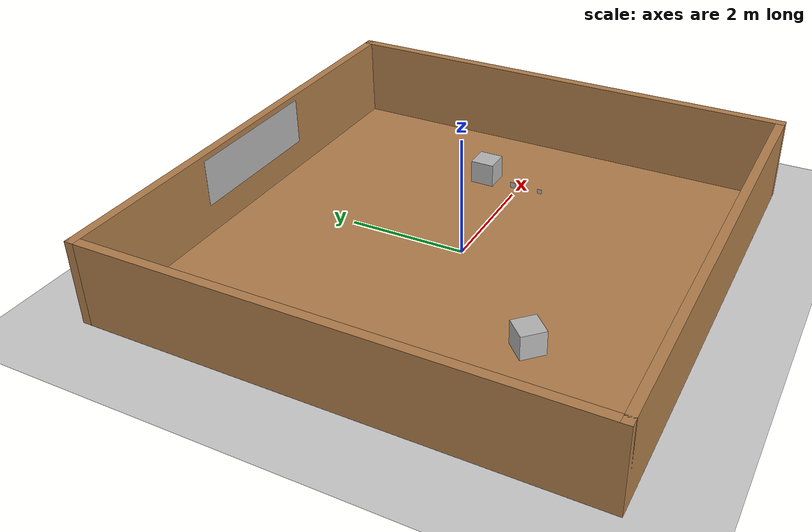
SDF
<?xml version="1.0" ?>
<sdf version="1.4">
	<world name="default">

		<include>
			<uri>model://ground_plane</uri>
		</include>

		<include>
			<uri>model://sun</uri>
		</include>

		<scene>
			<ambient>0.4 0.4 0.4 1</ambient>
			<background>0.7 0.7 0.7 1</background>
			<shadows>false</shadows>
		</scene>

		<gui fullscreen='0'>
			<camera name='user_camera'>
				<pose frame=''>6.577 -6.453 5.620 0 0.533 2.322</pose>
				<view_controller>orbit</view_controller>
				<projection_type>perspective</projection_type>
			</camera>
		</gui>

		<physics type="ode">
			<real_time_update_rate>1000.0</real_time_update_rate>
			<max_step_size>0.001</max_step_size>
			<real_time_factor>1</real_time_factor>
			<ode>
				<solver>
					<type>quick</type>
					<iters>150</iters>
					<precon_iters>0</precon_iters>
					<sor>1.400000</sor>
					<use_dynamic_moi_rescaling>1</use_dynamic_moi_rescaling>
				</solver>
				<constraints>
					<cfm>0.00001</cfm>
					<erp>0.2</erp>
					<contact_max_correcting_vel>2000.000000</contact_max_correcting_vel>
					<contact_surface_layer>0.01000</contact_surface_layer>
				</constraints>
			</ode>
		</physics>

		<model name="kubot_square">
			<static>1</static>
			<include>
				<uri>model://kubot_square</uri>
			</include>
		</model>

		<model name="syy_plaque">
			<include>
				<uri>model://syy_plaque</uri>
			</include>
			<pose>0 3.92 0.9 0 1.5707 1.5707</pose>
		</model>

		<model name="syy_cube1">
			<include>
				<uri>model://syy_cube</uri>
			</include>
			<pose>2 0.5 0.2 0 0 3.1415</pose>
		</model>

		<model name="syy_cube2">
			<include>
				<uri>model://syy_cube</uri>
			</include>
			<pose>-2 -2 0.2 0 0 0.7853</pose>
		</model>

		<model name="tag0">
			<static>1</static>
			<include>
				<uri>model://Apriltag/Apriltag36_11_00000</uri>
			</include>
			<pose frame=''> 2 0 0.2 3.14 -1.57 3.14</pose>
		</model>

		<model name="markers_0">
			<static>1</static>
			<include>
				<uri>model://Artag/Artag_markers_0</uri>
			</include>
			<pose frame=''> 2 -0.5 0.2 0 1.5707 0</pose>
		</model>
	</world>
</sdf>

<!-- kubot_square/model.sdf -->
<sdf version='1.4'>
	<model name='kubot_square'>
		<pose frame=''>0 0 0 0 -0 0</pose>
		<link name='Wall_0'>
			<collision name='Wall_0_Collision'>
				<geometry>
					<box>
						<size>8.15 0.15 1.4</size>
					</box>
				</geometry>
				<pose frame=''>0 0 0.7 0 -0 0</pose>
			</collision>
			<visual name='Wall_0_Visual'>
				<pose frame=''>0 0 0.7 0 -0 0</pose>
				<geometry>
					<box>
						<size>8.15 0.15 1.4</size>
					</box>
				</geometry>
				<material>
					<script>
						<uri>file://media/materials/scripts/gazebo.material</uri>
						<name>Gazebo/Wood</name>
					</script>
					<ambient>1 1 1 1</ambient>
				</material>
				<meta>
					<layer>0</layer>
				</meta>
			</visual>
			<pose frame=''>0 -4 0 0 -0 0</pose>
		</link>
		<link name='Wall_1'>
			<collision name='Wall_1_Collision'>
				<geometry>
					<box>
						<size>8.15 0.15 1.4</size>
					</box>
				</geometry>
				<pose frame=''>0 0 0.7 0 -0 0</pose>
			</collision>
			<visual name='Wall_1_Visual'>
				<pose frame=''>0 0 0.7 0 -0 0</pose>
				<geometry>
					<box>
						<size>8.15 0.15 1.4</size>
					</box>
				</geometry>
				<material>
					<script>
						<uri>file://media/materials/scripts/gazebo.material</uri>
						<name>Gazebo/Wood</name>
					</script>
					<ambient>1 1 1 1</ambient>
				</material>
				<meta>
					<layer>0</layer>
				</meta>
			</visual>
			<pose frame=''>4 0 0 0 -0 1.5708</pose>
		</link>
		<link name='Wall_2'>
			<collision name='Wall_2_Collision'>
				<geometry>
					<box>
						<size>8.15 0.16 1.4</size>
					</box>
				</geometry>
				<pose frame=''>0 0 0.7 0 -0 0</pose>
			</collision>
			<visual name='Wall_2_Visual'>
				<pose frame=''>0 0 0.7 0 -0 0</pose>
				<geometry>
					<box>
						<size>8.15 0.15 1.4</size>
					</box>
				</geometry>
				<material>
					<script>
						<uri>file://media/materials/scripts/gazebo.material</uri>
						<name>Gazebo/Wood</name>
					</script>
					<ambient>1 1 1 1</ambient>
				</material>
				<meta>
					<layer>0</layer>
				</meta>
			</visual>
			<pose frame=''>0 4 0 0 -0 3.14159</pose>
		</link>
		<link name='Wall_3'>
			<collision name='Wall_3_Collision'>
				<geometry>
					<box>
						<size>8.15 0.15 1.4</size>
					</box>
				</geometry>
				<pose frame=''>0 0 0.7 0 -0 0</pose>
			</collision>
			<visual name='Wall_3_Visual'>
				<pose frame=''>0 0 0.7 0 -0 0</pose>
				<geometry>
					<box>
						<size>8.15 0.15 1.4</size>
					</box>
				</geometry>
				<material>
					<script>
						<uri>file://media/materials/scripts/gazebo.material</uri>
						<name>Gazebo/Wood</name>
					</script>
					<ambient>1 1 1 1</ambient>
				</material>
				<meta>
					<layer>0</layer>
				</meta>
			</visual>
			<pose frame=''>-4 0 0 0 -0 -1.5708</pose>
		</link>
		<link name='Wall_4'>
			<collision name='Wall_4_Collision'>
				<geometry>
					<box>
						<size>8.15 8.15 0.001</size>
					</box>
				</geometry>
				<pose frame=''>0 0 0 0 -0 0</pose>
			</collision>
			<visual name='Wall_4_Visual'>
				<pose frame=''>0 0 0.0 0 -0 0</pose>
				<geometry>
					<box>
						<size>8.15 8.15 0.001</size>
					</box>
				</geometry>
				<material>
					<script>
						<uri>file://media/materials/scripts/gazebo.material</uri>
						<name>Gazebo/Wood</name>
					</script>
					<ambient>1 1 1 1</ambient>
				</material>
				<meta>
					<layer>0</layer>
				</meta>
			</visual>
			<pose frame=''>0 0 0 0 -0 0</pose>
		</link>
		<static>1</static>
	</model>
</sdf>

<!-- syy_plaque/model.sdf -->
<sdf version='1.6'>
	<model name='syy_plaque'>
		<link name='main'>
			<pose frame=''>0 0 0 0 0 0 </pose>
			<visual name='main_Visual'>
				<geometry>
					<box>
						<size>0.812 2.541 0.001</size>
					</box>
				</geometry>
				<material>
					<script>
						<uri>model://syy_plaque/materials/scripts</uri>
						<uri>model://syy_plaque/materials/textures</uri>
						<name>syy_plaque</name>
					</script>
				</material>
			</visual>
		</link>
		<static>1</static>
	</model>
</sdf>

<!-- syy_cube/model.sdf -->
<sdf version='1.6'>
  <model name='syy_cube'>
    <link name='link_0'>
      <inertial>
        <mass>1</mass>
        <inertia>
          <ixx>0.166667</ixx>
          <ixy>0</ixy>
          <ixz>0</ixz>
          <iyy>0.166667</iyy>
          <iyz>0</iyz>
          <izz>0.166667</izz>
        </inertia>
        <pose>0 0 0 0 -0 0</pose>
      </inertial>
      <pose>-0 0 0 0 -0 0</pose>
      <gravity>1</gravity>
      <self_collide>0</self_collide>
      <kinematic>0</kinematic>
      <enable_wind>0</enable_wind>
      <visual name='visual'>
        <pose>0 0 0 0 -0 0</pose>
        <geometry>
          <mesh>
            <uri>model://syy_cube/meshes/syy_cube.dae</uri>
            <scale>0.2 0.2 0.2</scale>
          </mesh>
        </geometry>
        <material>
          <lighting>0</lighting>
        </material>
        <transparency>0</transparency>
        <cast_shadows>1</cast_shadows>
      </visual>
      <collision name='collision'>
        <laser_retro>0</laser_retro>
        <max_contacts>10</max_contacts>
        <pose>0 0 0 0 -0 0</pose>
        <geometry>
          <mesh>
            <uri>model://syy_cube/meshes/syy_cube.dae</uri>
            <scale>0.2 0.2 0.2</scale>
          </mesh>
        </geometry>
        <surface>
          <friction>
            <ode>
              <mu>1</mu>
              <mu2>1</mu2>
              <fdir1>0 0 0</fdir1>
              <slip1>0</slip1>
              <slip2>0</slip2>
            </ode>
            <torsional>
              <coefficient>1</coefficient>
              <patch_radius>0</patch_radius>
              <surface_radius>0</surface_radius>
              <use_patch_radius>1</use_patch_radius>
              <ode>
                <slip>0</slip>
              </ode>
            </torsional>
          </friction>
          <bounce>
            <restitution_coefficient>0</restitution_coefficient>
            <threshold>1e+06</threshold>
          </bounce>
          <contact>
            <collide_without_contact>0</collide_without_contact>
            <collide_without_contact_bitmask>1</collide_without_contact_bitmask>
            <collide_bitmask>1</collide_bitmask>
            <ode>
              <soft_cfm>0</soft_cfm>
              <soft_erp>0.2</soft_erp>
              <kp>1e+13</kp>
              <kd>1</kd>
              <max_vel>0.01</max_vel>
              <min_depth>0</min_depth>
            </ode>
            <bullet>
              <split_impulse>1</split_impulse>
              <split_impulse_penetration_threshold>-0.01</split_impulse_penetration_threshold>
              <soft_cfm>0</soft_cfm>
              <soft_erp>0.2</soft_erp>
              <kp>1e+13</kp>
              <kd>1</kd>
            </bullet>
          </contact>
        </surface>
      </collision>
    </link>
    <static>0</static>
    <allow_auto_disable>1</allow_auto_disable>
  </model>
</sdf>

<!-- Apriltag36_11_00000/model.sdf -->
<sdf version='1.6'>
	<model name='Apriltag36_11_00000'>
		<link name='main'>
			<pose frame=''>0 0 0 0 0 0 </pose>
			<visual name='main_Visual'>
				<geometry>
					<box>
						<size>0.1 0.1 0.001</size>
					</box>
				</geometry>
				<material>
					<script>
						<uri>model://Apriltag/Apriltag36_11_00000/materials/scripts</uri>
						<uri>model://Apriltag/Apriltag36_11_00000/materials/textures</uri>
						<name>Apriltag36_11_00000</name>
					</script>
				</material>
			</visual>
		</link>
		<static>1</static>
	</model>
</sdf>

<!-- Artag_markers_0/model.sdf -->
<sdf version='1.6'>
	<model name='Artag_markers_0'>
		<link name='main'>
			<pose frame=''>0 0 0 0 0 0 </pose>
			<visual name='main_Visual'>
				<geometry>
					<box>
						<size>0.08 0.08 0.001</size>
					</box>
				</geometry>
				<material>
					<script>
						<uri>model://Artag/Artag_markers_0/materials/scripts</uri>
						<uri>model://Artag/Artag_markers_0/materials/textures</uri>
						<name>Artag_markers_0</name>
					</script>
				</material>
			</visual>
		</link>
		<static>1</static>
	</model>
</sdf>
